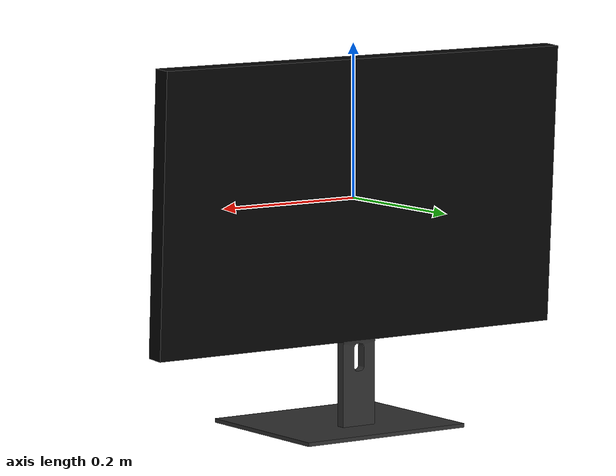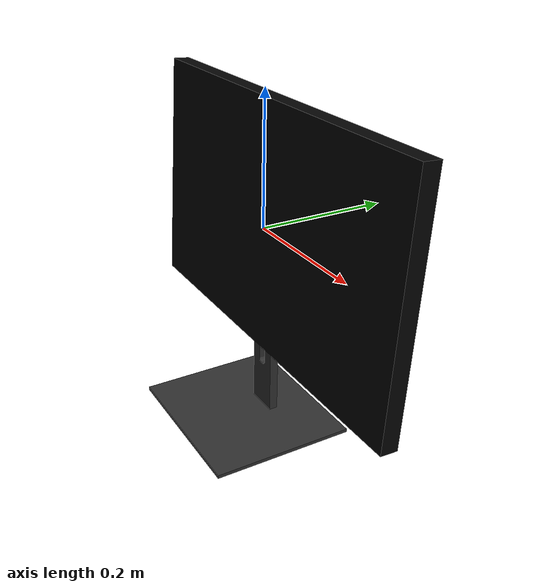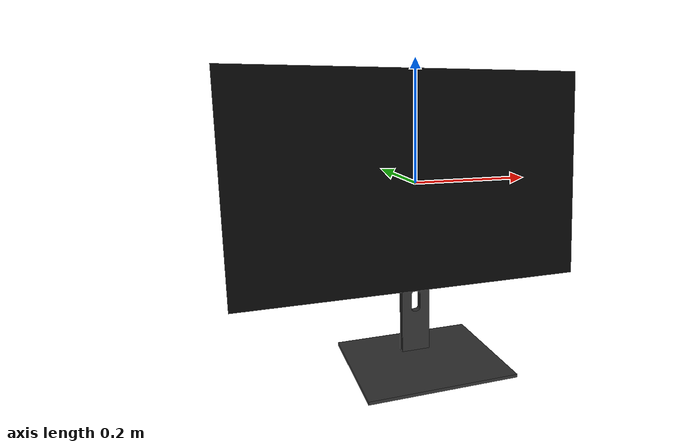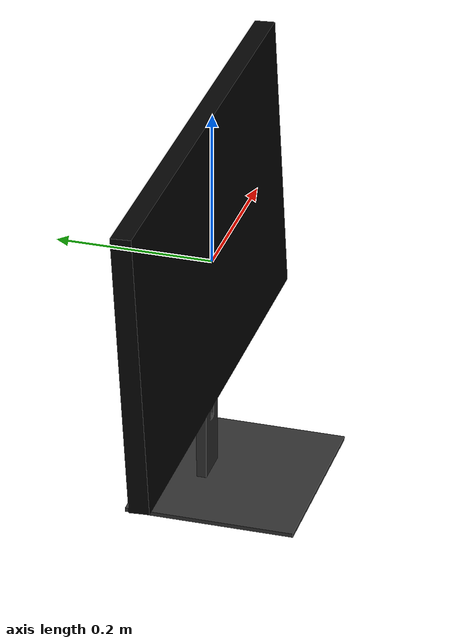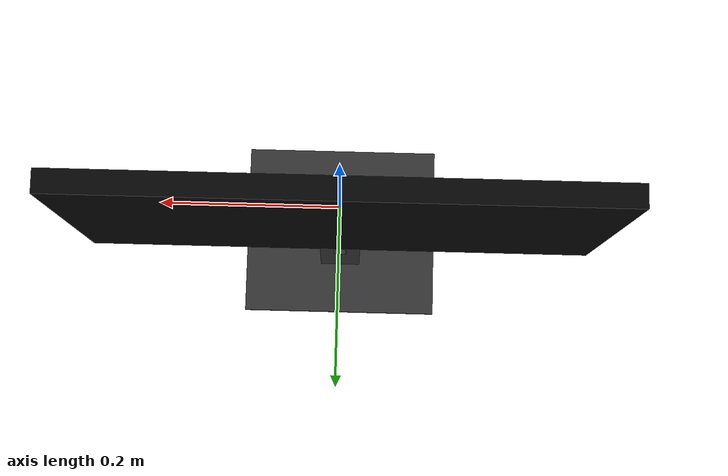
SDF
<?xml version='1.0'?>
<sdf version='1.5'>
    <model name="414_monitor">
        <pose>0 0 0 0 0 0</pose>
        <static>false</static>
        <link name='model_body'>
            <visual name="visual">
                <geometry>
                    <mesh>
                        <uri>model://rs_gazebo/meshes/ss_hq4/414_monitor/414_monitor_visual.dae</uri>
                        <scale>1 1 1</scale>
                    </mesh>
                </geometry>
            </visual>

            <collision name="collision">
                <geometry>
                    <mesh>
                        <uri>model://rs_gazebo/meshes/ss_hq4/414_monitor/414_monitor_collision.stl</uri>
                        <scale>1 1 1</scale>
                    </mesh>
                </geometry>
            </collision>

            <inertial>
                <pose> 0 0 0 0 0 0</pose>
                <inertia>
                    <ixx>0.0288541666667</ixx>
                    <ixy>0</ixy>
                    <ixz>0</ixz>
                    <iyy>0.103520833333</iyy>
                    <iyz>0</iyz>
                    <izz>0.0753333333333</izz>
                </inertia>
                <mass>2.5</mass>
            </inertial>
        </link>
    </model>
</sdf>
